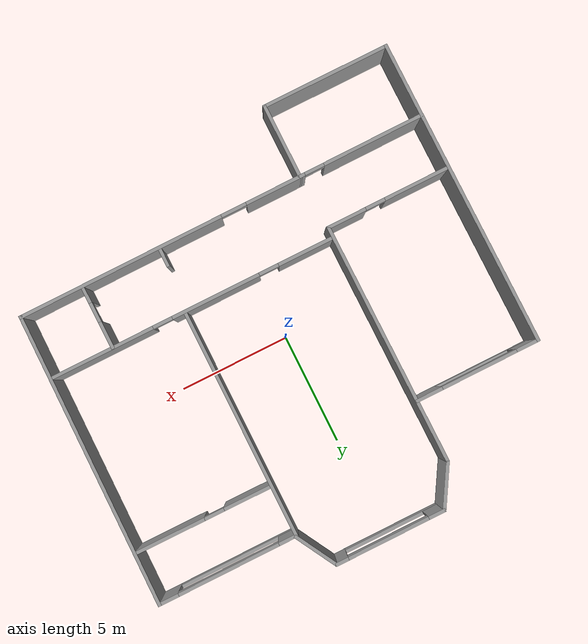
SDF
<?xml version='1.0'?>
<sdf version='1.7'>
  <model name='falt_model'>
    <pose>0.158541 0.170544 0 0 -0 0</pose>
    <link name='Wall_0'>
      <pose>-6.69195 4.70123 0 0 -0 -3.14002</pose>
      <visual name='Wall_0_Visual_0'>
        <pose>-2.28279 0 1.25 0 -0 0</pose>
        <geometry>
          <box>
            <size>1.24903 0.15 2.5</size>
          </box>
        </geometry>
        <material>
          <script>
            <uri>file://media/materials/scripts/gazebo.material</uri>
            <name>Gazebo/Grey</name>
          </script>
          <ambient>1 1 1 1</ambient>
        </material>
        <meta>
          <layer>0</layer>
        </meta>
      </visual>
      <collision name='Wall_0_Collision_0'>
        <geometry>
          <box>
            <size>1.24903 0.15 2.5</size>
          </box>
        </geometry>
        <pose>-2.28279 0 1.25 0 -0 0</pose>
      </collision>
      <visual name='Wall_0_Visual_1'>
        <pose>0.624515 0 0.25 0 -0 0</pose>
        <geometry>
          <box>
            <size>4.56558 0.15 0.5</size>
          </box>
        </geometry>
        <material>
          <script>
            <uri>file://media/materials/scripts/gazebo.material</uri>
            <name>Gazebo/Grey</name>
          </script>
          <ambient>1 1 1 1</ambient>
        </material>
        <meta>
          <layer>0</layer>
        </meta>
      </visual>
      <collision name='Wall_0_Collision_1'>
        <geometry>
          <box>
            <size>4.56558 0.15 0.5</size>
          </box>
        </geometry>
        <pose>0.624515 0 0.25 0 -0 0</pose>
      </collision>
      <visual name='Wall_0_Visual_2'>
        <pose>2.36563 0 1.5 0 -0 0</pose>
        <geometry>
          <box>
            <size>1.08335 0.15 2</size>
          </box>
        </geometry>
        <material>
          <script>
            <uri>file://media/materials/scripts/gazebo.material</uri>
            <name>Gazebo/Grey</name>
          </script>
          <ambient>1 1 1 1</ambient>
        </material>
        <meta>
          <layer>0</layer>
        </meta>
      </visual>
      <collision name='Wall_0_Collision_2'>
        <geometry>
          <box>
            <size>1.08335 0.15 2</size>
          </box>
        </geometry>
        <pose>2.36563 0 1.5 0 -0 0</pose>
      </collision>
      <visual name='Wall_0_Visual_3'>
        <pose>0.082842 0 2.25 0 -0 0</pose>
        <geometry>
          <box>
            <size>3.48223 0.15 0.5</size>
          </box>
        </geometry>
        <material>
          <script>
            <uri>file://media/materials/scripts/gazebo.material</uri>
            <name>Gazebo/Grey</name>
          </script>
          <ambient>1 1 1 1</ambient>
        </material>
        <meta>
          <layer>0</layer>
        </meta>
      </visual>
      <collision name='Wall_0_Collision_3'>
        <geometry>
          <box>
            <size>3.48223 0.15 0.5</size>
          </box>
        </geometry>
        <pose>0.082842 0 2.25 0 -0 0</pose>
      </collision>
    </link>
    <link name='Wall_1'>
      <collision name='Wall_1_Collision'>
        <geometry>
          <box>
            <size>14.1027 0.15 2.5</size>
          </box>
        </geometry>
        <pose>0 0 1.25 0 -0 0</pose>
      </collision>
      <visual name='Wall_1_Visual'>
        <pose>0 0 1.25 0 -0 0</pose>
        <geometry>
          <box>
            <size>14.1027 0.15 2.5</size>
          </box>
        </geometry>
        <material>
          <script>
            <uri>file://media/materials/scripts/gazebo.material</uri>
            <name>Gazebo/Grey</name>
          </script>
          <ambient>1 1 1 1</ambient>
        </material>
        <meta>
          <layer>0</layer>
        </meta>
      </visual>
      <pose>-9.48979 -2.27951 0 0 -0 -1.56586</pose>
    </link>
    <link name='Wall_11'>
      <collision name='Wall_11_Collision'>
        <geometry>
          <box>
            <size>11.0601 0.15 2.5</size>
          </box>
        </geometry>
        <pose>0 0 1.25 0 -0 0</pose>
      </collision>
      <visual name='Wall_11_Visual'>
        <pose>0 0 1.25 0 -0 0</pose>
        <geometry>
          <box>
            <size>11.0601 0.15 2.5</size>
          </box>
        </geometry>
        <material>
          <script>
            <uri>file://media/materials/scripts/gazebo.material</uri>
            <name>Gazebo/Grey</name>
          </script>
          <ambient>1 1 1 1</ambient>
        </material>
        <meta>
          <layer>0</layer>
        </meta>
      </visual>
      <pose>-3.82616 2.00348 0 0 -0 -1.56667</pose>
    </link>
    <link name='Wall_13'>
      <pose>-6.62756 -3.45819 0 0 -0 0.003469</pose>
      <visual name='Wall_13_Visual_0'>
        <pose>-1.34562 0 1.25 0 -0 0</pose>
        <geometry>
          <box>
            <size>3.01762 0.15 2.5</size>
          </box>
        </geometry>
        <material>
          <script>
            <uri>file://media/materials/scripts/gazebo.material</uri>
            <name>Gazebo/Grey</name>
          </script>
          <ambient>1 1 1 1</ambient>
        </material>
        <meta>
          <layer>0</layer>
        </meta>
      </visual>
      <collision name='Wall_13_Collision_0'>
        <geometry>
          <box>
            <size>3.01762 0.15 2.5</size>
          </box>
        </geometry>
        <pose>-1.34562 0 1.25 0 -0 0</pose>
      </collision>
      <visual name='Wall_13_Visual_1'>
        <pose>1.95881 0 1.25 0 -0 0</pose>
        <geometry>
          <box>
            <size>1.79124 0.15 2.5</size>
          </box>
        </geometry>
        <material>
          <script>
            <uri>file://media/materials/scripts/gazebo.material</uri>
            <name>Gazebo/Grey</name>
          </script>
          <ambient>1 1 1 1</ambient>
        </material>
        <meta>
          <layer>0</layer>
        </meta>
      </visual>
      <collision name='Wall_13_Collision_1'>
        <geometry>
          <box>
            <size>1.79124 0.15 2.5</size>
          </box>
        </geometry>
        <pose>1.95881 0 1.25 0 -0 0</pose>
      </collision>
      <visual name='Wall_13_Visual_2'>
        <pose>0.613187 0 2.25 0 -0 0</pose>
        <geometry>
          <box>
            <size>0.9 0.15 0.5</size>
          </box>
        </geometry>
        <material>
          <script>
            <uri>file://media/materials/scripts/gazebo.material</uri>
            <name>Gazebo/Grey</name>
          </script>
          <ambient>1 1 1 1</ambient>
        </material>
        <meta>
          <layer>0</layer>
        </meta>
      </visual>
      <collision name='Wall_13_Collision_2'>
        <geometry>
          <box>
            <size>0.9 0.15 0.5</size>
          </box>
        </geometry>
        <pose>0.613187 0 2.25 0 -0 0</pose>
      </collision>
    </link>
    <link name='Wall_15'>
      <pose>-6.57645 -5.93551 0 0 -0 -3.1355</pose>
      <visual name='Wall_15_Visual_0'>
        <pose>-2.77612 0 1.25 0 -0 0</pose>
        <geometry>
          <box>
            <size>0.270004 0.15 2.5</size>
          </box>
        </geometry>
        <material>
          <script>
            <uri>file://media/materials/scripts/gazebo.material</uri>
            <name>Gazebo/Grey</name>
          </script>
          <ambient>1 1 1 1</ambient>
        </material>
        <meta>
          <layer>0</layer>
        </meta>
      </visual>
      <collision name='Wall_15_Collision_0'>
        <geometry>
          <box>
            <size>0.270004 0.15 2.5</size>
          </box>
        </geometry>
        <pose>-2.77612 0 1.25 0 -0 0</pose>
      </collision>
      <visual name='Wall_15_Visual_1'>
        <pose>0.585002 0 1.25 0 -0 0</pose>
        <geometry>
          <box>
            <size>4.65224 0.15 2.5</size>
          </box>
        </geometry>
        <material>
          <script>
            <uri>file://media/materials/scripts/gazebo.material</uri>
            <name>Gazebo/Grey</name>
          </script>
          <ambient>1 1 1 1</ambient>
        </material>
        <meta>
          <layer>0</layer>
        </meta>
      </visual>
      <collision name='Wall_15_Collision_1'>
        <geometry>
          <box>
            <size>4.65224 0.15 2.5</size>
          </box>
        </geometry>
        <pose>0.585002 0 1.25 0 -0 0</pose>
      </collision>
      <visual name='Wall_15_Visual_2'>
        <pose>-2.19112 0 2.25 0 -0 0</pose>
        <geometry>
          <box>
            <size>0.9 0.15 0.5</size>
          </box>
        </geometry>
        <material>
          <script>
            <uri>file://media/materials/scripts/gazebo.material</uri>
            <name>Gazebo/Grey</name>
          </script>
          <ambient>1 1 1 1</ambient>
        </material>
        <meta>
          <layer>0</layer>
        </meta>
      </visual>
      <collision name='Wall_15_Collision_2'>
        <geometry>
          <box>
            <size>0.9 0.15 0.5</size>
          </box>
        </geometry>
        <pose>-2.19112 0 2.25 0 -0 0</pose>
      </collision>
    </link>
    <link name='Wall_17'>
      <pose>2.82289 -2.98794 0 0 -0 0.000658</pose>
      <visual name='Wall_17_Visual_0'>
        <pose>-5.3418 0 1.25 0 -0 0</pose>
        <geometry>
          <box>
            <size>2.60051 0.15 2.5</size>
          </box>
        </geometry>
        <material>
          <script>
            <uri>file://media/materials/scripts/gazebo.material</uri>
            <name>Gazebo/Grey</name>
          </script>
          <ambient>1 1 1 1</ambient>
        </material>
        <meta>
          <layer>0</layer>
        </meta>
      </visual>
      <collision name='Wall_17_Collision_0'>
        <geometry>
          <box>
            <size>2.60051 0.15 2.5</size>
          </box>
        </geometry>
        <pose>-5.3418 0 1.25 0 -0 0</pose>
      </collision>
      <visual name='Wall_17_Visual_1'>
        <pose>-1.10383 0 1.25 0 -0 0</pose>
        <geometry>
          <box>
            <size>4.07544 0.15 2.5</size>
          </box>
        </geometry>
        <material>
          <script>
            <uri>file://media/materials/scripts/gazebo.material</uri>
            <name>Gazebo/Grey</name>
          </script>
          <ambient>1 1 1 1</ambient>
        </material>
        <meta>
          <layer>0</layer>
        </meta>
      </visual>
      <collision name='Wall_17_Collision_1'>
        <geometry>
          <box>
            <size>4.07544 0.15 2.5</size>
          </box>
        </geometry>
        <pose>-1.10383 0 1.25 0 -0 0</pose>
      </collision>
      <visual name='Wall_17_Visual_2'>
        <pose>4.23797 0 1.25 0 -0 0</pose>
        <geometry>
          <box>
            <size>4.80816 0.15 2.5</size>
          </box>
        </geometry>
        <material>
          <script>
            <uri>file://media/materials/scripts/gazebo.material</uri>
            <name>Gazebo/Grey</name>
          </script>
          <ambient>1 1 1 1</ambient>
        </material>
        <meta>
          <layer>0</layer>
        </meta>
      </visual>
      <collision name='Wall_17_Collision_2'>
        <geometry>
          <box>
            <size>4.80816 0.15 2.5</size>
          </box>
        </geometry>
        <pose>4.23797 0 1.25 0 -0 0</pose>
      </collision>
      <visual name='Wall_17_Visual_3'>
        <pose>-3.59155 0 2.25 0 -0 0</pose>
        <geometry>
          <box>
            <size>0.9 0.15 0.5</size>
          </box>
        </geometry>
        <material>
          <script>
            <uri>file://media/materials/scripts/gazebo.material</uri>
            <name>Gazebo/Grey</name>
          </script>
          <ambient>1 1 1 1</ambient>
        </material>
        <meta>
          <layer>0</layer>
        </meta>
      </visual>
      <collision name='Wall_17_Collision_3'>
        <geometry>
          <box>
            <size>0.9 0.15 0.5</size>
          </box>
        </geometry>
        <pose>-3.59155 0 2.25 0 -0 0</pose>
      </collision>
      <visual name='Wall_17_Visual_4'>
        <pose>1.38389 0 2.25 0 -0 0</pose>
        <geometry>
          <box>
            <size>0.9 0.15 0.5</size>
          </box>
        </geometry>
        <material>
          <script>
            <uri>file://media/materials/scripts/gazebo.material</uri>
            <name>Gazebo/Grey</name>
          </script>
          <ambient>1 1 1 1</ambient>
        </material>
        <meta>
          <layer>0</layer>
        </meta>
      </visual>
      <collision name='Wall_17_Collision_4'>
        <geometry>
          <box>
            <size>0.9 0.15 0.5</size>
          </box>
        </geometry>
        <pose>1.38389 0 2.25 0 -0 0</pose>
      </collision>
    </link>
    <link name='Wall_19'>
      <pose>6.54523 -4.40598 0 0 -0 -1.5646</pose>
      <visual name='Wall_19_Visual_0'>
        <pose>-0.842287 0 1.25 0 -0 0</pose>
        <geometry>
          <box>
            <size>1.25832 0.15 2.5</size>
          </box>
        </geometry>
        <material>
          <script>
            <uri>file://media/materials/scripts/gazebo.material</uri>
            <name>Gazebo/Grey</name>
          </script>
          <ambient>1 1 1 1</ambient>
        </material>
        <meta>
          <layer>0</layer>
        </meta>
      </visual>
      <collision name='Wall_19_Collision_0'>
        <geometry>
          <box>
            <size>1.25832 0.15 2.5</size>
          </box>
        </geometry>
        <pose>-0.842287 0 1.25 0 -0 0</pose>
      </collision>
      <visual name='Wall_19_Visual_1'>
        <pose>1.07916 0 1.25 0 -0 0</pose>
        <geometry>
          <box>
            <size>0.784573 0.15 2.5</size>
          </box>
        </geometry>
        <material>
          <script>
            <uri>file://media/materials/scripts/gazebo.material</uri>
            <name>Gazebo/Grey</name>
          </script>
          <ambient>1 1 1 1</ambient>
        </material>
        <meta>
          <layer>0</layer>
        </meta>
      </visual>
      <collision name='Wall_19_Collision_1'>
        <geometry>
          <box>
            <size>0.784573 0.15 2.5</size>
          </box>
        </geometry>
        <pose>1.07916 0 1.25 0 -0 0</pose>
      </collision>
      <visual name='Wall_19_Visual_2'>
        <pose>0.236871 0 2.25 0 -0 0</pose>
        <geometry>
          <box>
            <size>0.9 0.15 0.5</size>
          </box>
        </geometry>
        <material>
          <script>
            <uri>file://media/materials/scripts/gazebo.material</uri>
            <name>Gazebo/Grey</name>
          </script>
          <ambient>1 1 1 1</ambient>
        </material>
        <meta>
          <layer>0</layer>
        </meta>
      </visual>
      <collision name='Wall_19_Collision_2'>
        <geometry>
          <box>
            <size>0.9 0.15 0.5</size>
          </box>
        </geometry>
        <pose>0.236871 0 2.25 0 -0 0</pose>
      </collision>
    </link>
    <link name='Wall_2'>
      <collision name='Wall_2_Collision'>
        <geometry>
          <box>
            <size>5.90106 0.15 2.5</size>
          </box>
        </geometry>
        <pose>0 0 1.25 0 -0 0</pose>
      </collision>
      <visual name='Wall_2_Visual'>
        <pose>0 0 1.25 0 -0 0</pose>
        <geometry>
          <box>
            <size>5.90106 0.15 2.5</size>
          </box>
        </geometry>
        <material>
          <script>
            <uri>file://media/materials/scripts/gazebo.material</uri>
            <name>Gazebo/Grey</name>
          </script>
          <ambient>1 1 1 1</ambient>
        </material>
        <meta>
          <layer>0</layer>
        </meta>
      </visual>
      <pose>-6.5798 -9.25394 0 0 -0 0.000644</pose>
    </link>
    <link name='Wall_21'>
      <collision name='Wall_21_Collision'>
        <geometry>
          <box>
            <size>0.87631 0.15 2.5</size>
          </box>
        </geometry>
        <pose>0 0 1.25 0 -0 0</pose>
      </collision>
      <visual name='Wall_21_Visual'>
        <pose>0 0 1.25 0 -0 0</pose>
        <geometry>
          <box>
            <size>0.87631 0.15 2.5</size>
          </box>
        </geometry>
        <material>
          <script>
            <uri>file://media/materials/scripts/gazebo.material</uri>
            <name>Gazebo/Grey</name>
          </script>
          <ambient>1 1 1 1</ambient>
        </material>
        <meta>
          <layer>0</layer>
        </meta>
      </visual>
      <pose>2.93962 -5.4306 0 0 -0 -1.5708</pose>
    </link>
    <link name='Wall_23'>
      <collision name='Wall_23_Collision'>
        <geometry>
          <box>
            <size>10.4557 0.15 2.5</size>
          </box>
        </geometry>
        <pose>0 0 1.25 0 -0 0</pose>
      </collision>
      <visual name='Wall_23_Visual'>
        <pose>0 0 1.25 0 -0 0</pose>
        <geometry>
          <box>
            <size>10.4557 0.15 2.5</size>
          </box>
        </geometry>
        <material>
          <script>
            <uri>file://media/materials/scripts/gazebo.material</uri>
            <name>Gazebo/Grey</name>
          </script>
          <ambient>1 1 1 1</ambient>
        </material>
        <meta>
          <layer>0</layer>
        </meta>
      </visual>
      <pose>3.17389 2.30902 0 0 -0 -1.57071</pose>
    </link>
    <link name='Wall_25'>
      <pose>6.3156 5.11522 0 0 -0 -0.006369</pose>
      <visual name='Wall_25_Visual_0'>
        <pose>-2.06943 0 1.25 0 -0 0</pose>
        <geometry>
          <box>
            <size>2.25581 0.15 2.5</size>
          </box>
        </geometry>
        <material>
          <script>
            <uri>file://media/materials/scripts/gazebo.material</uri>
            <name>Gazebo/Grey</name>
          </script>
          <ambient>1 1 1 1</ambient>
        </material>
        <meta>
          <layer>0</layer>
        </meta>
      </visual>
      <collision name='Wall_25_Collision_0'>
        <geometry>
          <box>
            <size>2.25581 0.15 2.5</size>
          </box>
        </geometry>
        <pose>-2.06943 0 1.25 0 -0 0</pose>
      </collision>
      <visual name='Wall_25_Visual_1'>
        <pose>1.5779 0 1.25 0 -0 0</pose>
        <geometry>
          <box>
            <size>3.23886 0.15 2.5</size>
          </box>
        </geometry>
        <material>
          <script>
            <uri>file://media/materials/scripts/gazebo.material</uri>
            <name>Gazebo/Grey</name>
          </script>
          <ambient>1 1 1 1</ambient>
        </material>
        <meta>
          <layer>0</layer>
        </meta>
      </visual>
      <collision name='Wall_25_Collision_1'>
        <geometry>
          <box>
            <size>3.23886 0.15 2.5</size>
          </box>
        </geometry>
        <pose>1.5779 0 1.25 0 -0 0</pose>
      </collision>
      <visual name='Wall_25_Visual_2'>
        <pose>-0.491526 0 2.25 0 -0 0</pose>
        <geometry>
          <box>
            <size>0.9 0.15 0.5</size>
          </box>
        </geometry>
        <material>
          <script>
            <uri>file://media/materials/scripts/gazebo.material</uri>
            <name>Gazebo/Grey</name>
          </script>
          <ambient>1 1 1 1</ambient>
        </material>
        <meta>
          <layer>0</layer>
        </meta>
      </visual>
      <collision name='Wall_25_Collision_2'>
        <geometry>
          <box>
            <size>0.9 0.15 0.5</size>
          </box>
        </geometry>
        <pose>-0.491526 0 2.25 0 -0 0</pose>
      </collision>
    </link>
    <link name='Wall_27'>
      <collision name='Wall_27_Collision'>
        <geometry>
          <box>
            <size>2.09791 0.15 2.5</size>
          </box>
        </geometry>
        <pose>0 0 1.25 0 -0 0</pose>
      </collision>
      <visual name='Wall_27_Visual'>
        <pose>0 0 1.25 0 -0 0</pose>
        <geometry>
          <box>
            <size>2.09791 0.15 2.5</size>
          </box>
        </geometry>
        <material>
          <script>
            <uri>file://media/materials/scripts/gazebo.material</uri>
            <name>Gazebo/Grey</name>
          </script>
          <ambient>1 1 1 1</ambient>
        </material>
        <meta>
          <layer>0</layer>
        </meta>
      </visual>
      <pose>-3.31749 8.39249 0 0 -0 1.03011</pose>
    </link>
    <link name='Wall_29'>
      <collision name='Wall_29_Collision'>
        <geometry>
          <box>
            <size>2.15321 0.15 2.5</size>
          </box>
        </geometry>
        <pose>0 0 1.25 0 -0 0</pose>
      </collision>
      <visual name='Wall_29_Visual'>
        <pose>0 0 1.25 0 -0 0</pose>
        <geometry>
          <box>
            <size>2.15321 0.15 2.5</size>
          </box>
        </geometry>
        <material>
          <script>
            <uri>file://media/materials/scripts/gazebo.material</uri>
            <name>Gazebo/Grey</name>
          </script>
          <ambient>1 1 1 1</ambient>
        </material>
        <meta>
          <layer>0</layer>
        </meta>
      </visual>
      <pose>2.71338 8.35305 0 0 -0 -1.05987</pose>
    </link>
    <link name='Wall_3'>
      <collision name='Wall_3_Collision'>
        <geometry>
          <box>
            <size>3.48434 0.15 2.5</size>
          </box>
        </geometry>
        <pose>0 0 1.25 0 -0 0</pose>
      </collision>
      <visual name='Wall_3_Visual'>
        <pose>0 0 1.25 0 -0 0</pose>
        <geometry>
          <box>
            <size>3.48434 0.15 2.5</size>
          </box>
        </geometry>
        <material>
          <script>
            <uri>file://media/materials/scripts/gazebo.material</uri>
            <name>Gazebo/Grey</name>
          </script>
          <ambient>1 1 1 1</ambient>
        </material>
        <meta>
          <layer>0</layer>
        </meta>
      </visual>
      <pose>-3.70427 -7.58493 0 0 -0 1.5708</pose>
    </link>
    <link name='Wall_4'>
      <pose>2.85733 -5.88717 0 0 -0 0.004662</pose>
      <visual name='Wall_4_Visual_0'>
        <pose>-5.32571 0 1.25 0 -0 0</pose>
        <geometry>
          <box>
            <size>2.62193 0.15 2.5</size>
          </box>
        </geometry>
        <material>
          <script>
            <uri>file://media/materials/scripts/gazebo.material</uri>
            <name>Gazebo/Grey</name>
          </script>
          <ambient>1 1 1 1</ambient>
        </material>
        <meta>
          <layer>0</layer>
        </meta>
      </visual>
      <collision name='Wall_4_Collision_0'>
        <geometry>
          <box>
            <size>2.62193 0.15 2.5</size>
          </box>
        </geometry>
        <pose>-5.32571 0 1.25 0 -0 0</pose>
      </collision>
      <visual name='Wall_4_Visual_1'>
        <pose>1.89571 0 1.25 0 -0 0</pose>
        <geometry>
          <box>
            <size>9.48194 0.15 2.5</size>
          </box>
        </geometry>
        <material>
          <script>
            <uri>file://media/materials/scripts/gazebo.material</uri>
            <name>Gazebo/Grey</name>
          </script>
          <ambient>1 1 1 1</ambient>
        </material>
        <meta>
          <layer>0</layer>
        </meta>
      </visual>
      <collision name='Wall_4_Collision_1'>
        <geometry>
          <box>
            <size>9.48194 0.15 2.5</size>
          </box>
        </geometry>
        <pose>1.89571 0 1.25 0 -0 0</pose>
      </collision>
      <visual name='Wall_4_Visual_2'>
        <pose>-3.43 0 2.25 0 -0 0</pose>
        <geometry>
          <box>
            <size>1.16949 0.15 0.5</size>
          </box>
        </geometry>
        <material>
          <script>
            <uri>file://media/materials/scripts/gazebo.material</uri>
            <name>Gazebo/Grey</name>
          </script>
          <ambient>1 1 1 1</ambient>
        </material>
        <meta>
          <layer>0</layer>
        </meta>
      </visual>
      <collision name='Wall_4_Collision_2'>
        <geometry>
          <box>
            <size>1.16949 0.15 0.5</size>
          </box>
        </geometry>
        <pose>-3.43 0 2.25 0 -0 0</pose>
      </collision>
    </link>
    <link name='Wall_5'>
      <collision name='Wall_5_Collision'>
        <geometry>
          <box>
            <size>13.4349 0.15 2.5</size>
          </box>
        </geometry>
        <pose>0 0 1.25 0 -0 0</pose>
      </collision>
      <visual name='Wall_5_Visual'>
        <pose>0 0 1.25 0 -0 0</pose>
        <geometry>
          <box>
            <size>13.4349 0.15 2.5</size>
          </box>
        </geometry>
        <material>
          <script>
            <uri>file://media/materials/scripts/gazebo.material</uri>
            <name>Gazebo/Grey</name>
          </script>
          <ambient>1 1 1 1</ambient>
        </material>
        <meta>
          <layer>0</layer>
        </meta>
      </visual>
      <pose>9.47148 0.785643 0 0 -0 1.56289</pose>
    </link>
    <link name='Wall_6'>
      <pose>6.40685 7.4277 0 0 -0 -3.14154</pose>
      <visual name='Wall_6_Visual_0'>
        <pose>-2.70911 0 1.25 0 -0 0</pose>
        <geometry>
          <box>
            <size>0.96614 0.15 2.5</size>
          </box>
        </geometry>
        <material>
          <script>
            <uri>file://media/materials/scripts/gazebo.material</uri>
            <name>Gazebo/Grey</name>
          </script>
          <ambient>1 1 1 1</ambient>
        </material>
        <meta>
          <layer>0</layer>
        </meta>
      </visual>
      <collision name='Wall_6_Collision_0'>
        <geometry>
          <box>
            <size>0.96614 0.15 2.5</size>
          </box>
        </geometry>
        <pose>-2.70911 0 1.25 0 -0 0</pose>
      </collision>
      <visual name='Wall_6_Visual_1'>
        <pose>0.48307 0 0.25 0 -0 0</pose>
        <geometry>
          <box>
            <size>5.41822 0.15 0.5</size>
          </box>
        </geometry>
        <material>
          <script>
            <uri>file://media/materials/scripts/gazebo.material</uri>
            <name>Gazebo/Grey</name>
          </script>
          <ambient>1 1 1 1</ambient>
        </material>
        <meta>
          <layer>0</layer>
        </meta>
      </visual>
      <collision name='Wall_6_Collision_1'>
        <geometry>
          <box>
            <size>5.41822 0.15 0.5</size>
          </box>
        </geometry>
        <pose>0.48307 0 0.25 0 -0 0</pose>
      </collision>
      <visual name='Wall_6_Visual_2'>
        <pose>2.81013 0 1.5 0 -0 0</pose>
        <geometry>
          <box>
            <size>0.764108 0.15 2</size>
          </box>
        </geometry>
        <material>
          <script>
            <uri>file://media/materials/scripts/gazebo.material</uri>
            <name>Gazebo/Grey</name>
          </script>
          <ambient>1 1 1 1</ambient>
        </material>
        <meta>
          <layer>0</layer>
        </meta>
      </visual>
      <collision name='Wall_6_Collision_2'>
        <geometry>
          <box>
            <size>0.764108 0.15 2</size>
          </box>
        </geometry>
        <pose>2.81013 0 1.5 0 -0 0</pose>
      </collision>
      <visual name='Wall_6_Visual_3'>
        <pose>0.101016 0 2.25 0 -0 0</pose>
        <geometry>
          <box>
            <size>4.65411 0.15 0.5</size>
          </box>
        </geometry>
        <material>
          <script>
            <uri>file://media/materials/scripts/gazebo.material</uri>
            <name>Gazebo/Grey</name>
          </script>
          <ambient>1 1 1 1</ambient>
        </material>
        <meta>
          <layer>0</layer>
        </meta>
      </visual>
      <collision name='Wall_6_Collision_3'>
        <geometry>
          <box>
            <size>4.65411 0.15 0.5</size>
          </box>
        </geometry>
        <pose>0.101016 0 2.25 0 -0 0</pose>
      </collision>
    </link>
    <link name='Wall_9'>
      <pose>-0.296192 9.25453 0 0 -0 3.14095</pose>
      <visual name='Wall_9_Visual_0'>
        <pose>-2.24984 0 1.25 0 -0 0</pose>
        <geometry>
          <box>
            <size>0.602381 0.15 2.5</size>
          </box>
        </geometry>
        <material>
          <script>
            <uri>file://media/materials/scripts/gazebo.material</uri>
            <name>Gazebo/Grey</name>
          </script>
          <ambient>1 1 1 1</ambient>
        </material>
        <meta>
          <layer>0</layer>
        </meta>
      </visual>
      <collision name='Wall_9_Collision_0'>
        <geometry>
          <box>
            <size>0.602381 0.15 2.5</size>
          </box>
        </geometry>
        <pose>-2.24984 0 1.25 0 -0 0</pose>
      </collision>
      <visual name='Wall_9_Visual_1'>
        <pose>0.30119 0 0.25 0 -0 0</pose>
        <geometry>
          <box>
            <size>4.49969 0.15 0.5</size>
          </box>
        </geometry>
        <material>
          <script>
            <uri>file://media/materials/scripts/gazebo.material</uri>
            <name>Gazebo/Grey</name>
          </script>
          <ambient>1 1 1 1</ambient>
        </material>
        <meta>
          <layer>0</layer>
        </meta>
      </visual>
      <collision name='Wall_9_Collision_1'>
        <geometry>
          <box>
            <size>4.49969 0.15 0.5</size>
          </box>
        </geometry>
        <pose>0.30119 0 0.25 0 -0 0</pose>
      </collision>
      <visual name='Wall_9_Visual_2'>
        <pose>2.16487 0 1.5 0 -0 0</pose>
        <geometry>
          <box>
            <size>0.772335 0.15 2</size>
          </box>
        </geometry>
        <material>
          <script>
            <uri>file://media/materials/scripts/gazebo.material</uri>
            <name>Gazebo/Grey</name>
          </script>
          <ambient>1 1 1 1</ambient>
        </material>
        <meta>
          <layer>0</layer>
        </meta>
      </visual>
      <collision name='Wall_9_Collision_2'>
        <geometry>
          <box>
            <size>0.772335 0.15 2</size>
          </box>
        </geometry>
        <pose>2.16487 0 1.5 0 -0 0</pose>
      </collision>
      <visual name='Wall_9_Visual_3'>
        <pose>-0.084977 0 2.25 0 -0 0</pose>
        <geometry>
          <box>
            <size>3.72735 0.15 0.5</size>
          </box>
        </geometry>
        <material>
          <script>
            <uri>file://media/materials/scripts/gazebo.material</uri>
            <name>Gazebo/Grey</name>
          </script>
          <ambient>1 1 1 1</ambient>
        </material>
        <meta>
          <layer>0</layer>
        </meta>
      </visual>
      <collision name='Wall_9_Collision_3'>
        <geometry>
          <box>
            <size>3.72735 0.15 0.5</size>
          </box>
        </geometry>
        <pose>-0.084977 0 2.25 0 -0 0</pose>
      </collision>
    </link>
    <static>1</static>
  </model>
</sdf>
